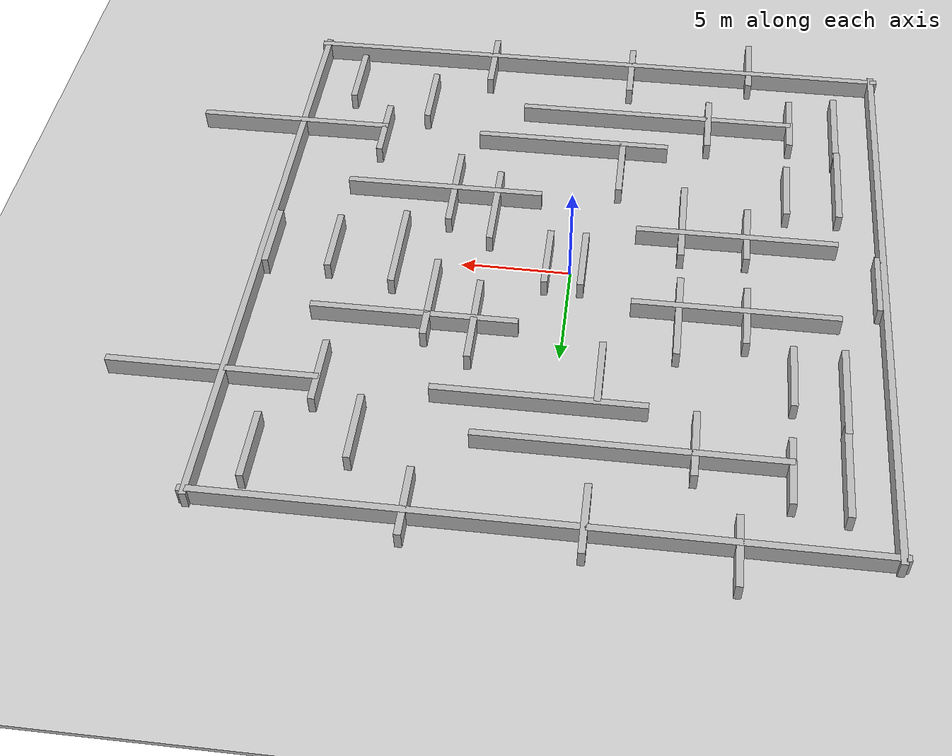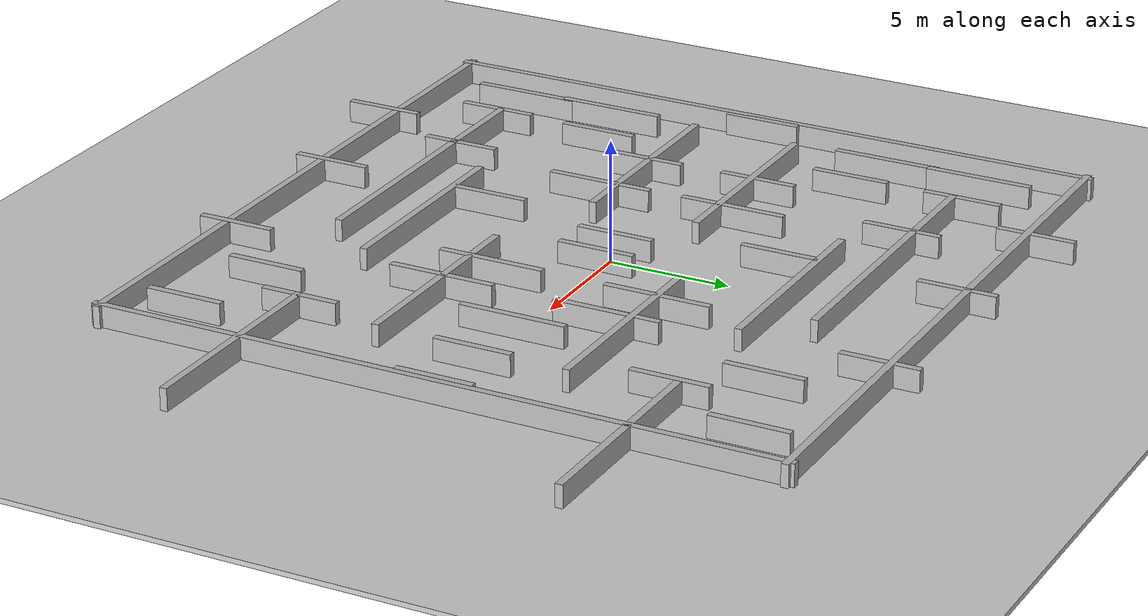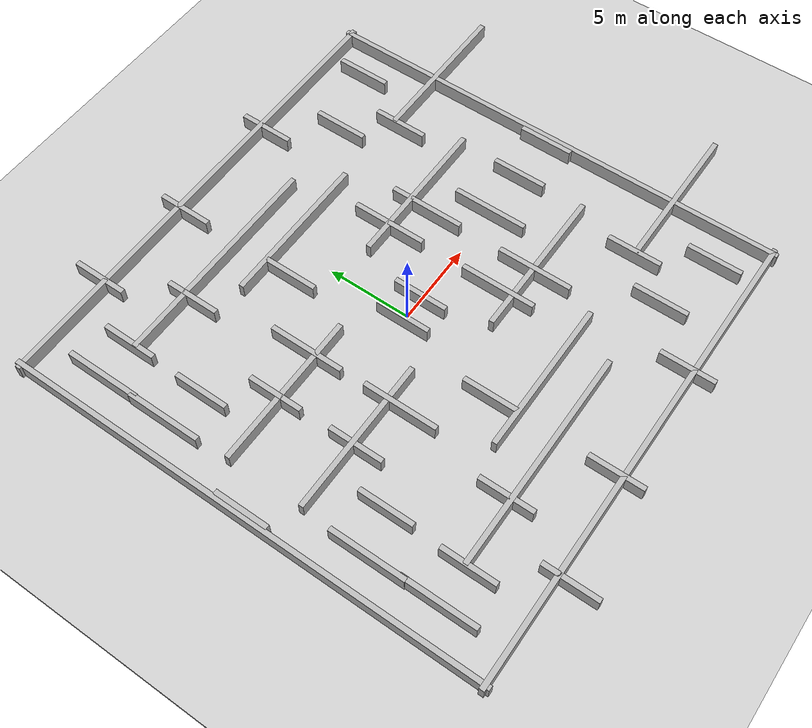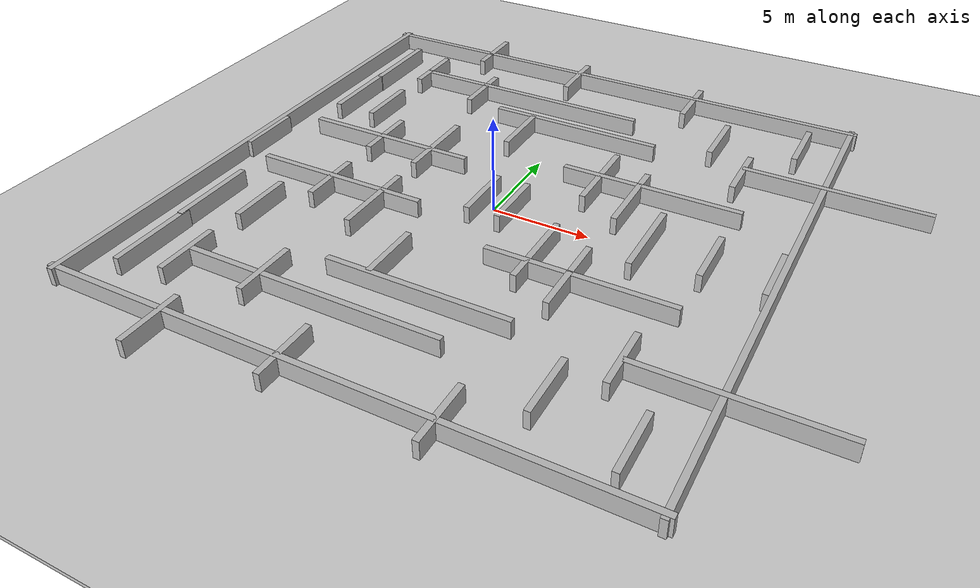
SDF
<sdf version="1.10">
  <world name="pac_mouse_maze">
    <model name="maze">
      <static>true</static>
      <scale>50 50 50</scale>
    <physics name="1ms" type="ignored">
      <max_step_size>0.001</max_step_size>
      <real_time_factor>1</real_time_factor>
      <real_time_update_rate>1000</real_time_update_rate>
    </physics>
    <plugin name="gz::sim::systems::Physics" filename="gz-sim-physics-system" />
    <plugin name="gz::sim::systems::UserCommands" filename="gz-sim-user-commands-system" />
    <plugin name="gz::sim::systems::SceneBroadcaster" filename="gz-sim-scene-broadcaster-system" />
    <plugin name="gz::sim::systems::Sensors" filename="gz-sim-sensors-system">
      <render_engine>ogre2</render_engine>
    </plugin>
    <gravity>0 0 -9.8000000000000007</gravity>
    <magnetic_field>5.5644999999999998e-06 2.2875799999999999e-05 -4.2388400000000002e-05</magnetic_field>
    <atmosphere type="adiabatic" />
    <scene>
      <ambient>0.400000006 0.400000006 0.400000006 1</ambient>
      <background>0.699999988 0.699999988 0.699999988 1</background>
      <shadows>true</shadows>
    </scene>
    <model name="ground_plane">
      <static>true</static>
      <link name="link">
        <collision name="collision">
          <geometry>
            <plane>
              <normal>0 0 1</normal>
              <size>200.0 200.0</size>
            </plane>
          </geometry>
          <surface>
            <friction>
              <ode />
            </friction>
            <bounce />
            <contact />
          </surface>
        </collision>
        <visual name="visual">
          <geometry>
            <plane>
              <normal>0 0 1</normal>
              <size>200.0 200.0</size>
            </plane>
          </geometry>
          <material>
            <ambient>0.800000012 0.800000012 0.800000012 1</ambient>
            <diffuse>0.800000012 0.800000012 0.800000012 1</diffuse>
          </material>
        </visual>
        <pose>0.0 0.0 0.0 0.0 0.0 0.0</pose>
        <inertial>
          <pose>0.0 0.0 0.0 0.0 0.0 0.0</pose>
          <mass>1</mass>
          <inertia>
            <ixx>1</ixx>
            <ixy>0</ixy>
            <ixz>0</ixz>
            <iyy>1</iyy>
            <iyz>0</iyz>
            <izz>1</izz>
          </inertia>
        </inertial>
        <enable_wind>false</enable_wind>
      </link>
      <pose>0.0 0.0 0.0 0.0 0.0 0.0</pose>
      <self_collide>false</self_collide>
    </model>
    <model name="wall_n">
      <static>true</static>
      <link name="l">
        <pose>0.0 14.0 0.5 0.0 0.0 0.0</pose>
        <collision name="c">
          <geometry>
            <box>
              <size>28.6 0.3 1.0</size>
            </box>
          </geometry>
          <surface>
            <friction>
              <ode />
            </friction>
            <bounce />
            <contact />
          </surface>
        </collision>
        <visual name="v">
          <geometry>
            <box>
              <size>28.6 0.3 1.0</size>
            </box>
          </geometry>
        </visual>
        <inertial>
          <pose>0.0 0.0 0.0 0.0 0.0 0.0</pose>
          <mass>1</mass>
          <inertia>
            <ixx>1</ixx>
            <ixy>0</ixy>
            <ixz>0</ixz>
            <iyy>1</iyy>
            <iyz>0</iyz>
            <izz>1</izz>
          </inertia>
        </inertial>
        <enable_wind>false</enable_wind>
      </link>
      <pose>0.0 0.0 0.0 0.0 0.0 0.0</pose>
      <self_collide>false</self_collide>
    </model>
    <model name="wall_s">
      <static>true</static>
      <link name="l">
        <pose>0.0 -14.0 0.5 0.0 0.0 0.0</pose>
        <collision name="c">
          <geometry>
            <box>
              <size>28.6 0.3 1.0</size>
            </box>
          </geometry>
          <surface>
            <friction>
              <ode />
            </friction>
            <bounce />
            <contact />
          </surface>
        </collision>
        <visual name="v">
          <geometry>
            <box>
              <size>28.6 0.3 1.0</size>
            </box>
          </geometry>
        </visual>
        <inertial>
          <pose>0.0 0.0 0.0 0.0 0.0 0.0</pose>
          <mass>1</mass>
          <inertia>
            <ixx>1</ixx>
            <ixy>0</ixy>
            <ixz>0</ixz>
            <iyy>1</iyy>
            <iyz>0</iyz>
            <izz>1</izz>
          </inertia>
        </inertial>
        <enable_wind>false</enable_wind>
      </link>
      <pose>0.0 0.0 0.0 0.0 0.0 0.0</pose>
      <self_collide>false</self_collide>
    </model>
    <model name="wall_e">
      <static>true</static>
      <link name="l">
        <pose>14.0 0.0 0.5 0.0 0.0 0.0</pose>
        <collision name="c">
          <geometry>
            <box>
              <size>0.3 28.6 1.0</size>
            </box>
          </geometry>
          <surface>
            <friction>
              <ode />
            </friction>
            <bounce />
            <contact />
          </surface>
        </collision>
        <visual name="v">
          <geometry>
            <box>
              <size>0.3 28.6 1.0</size>
            </box>
          </geometry>
        </visual>
        <inertial>
          <pose>0.0 0.0 0.0 0.0 0.0 0.0</pose>
          <mass>1</mass>
          <inertia>
            <ixx>1</ixx>
            <ixy>0</ixy>
            <ixz>0</ixz>
            <iyy>1</iyy>
            <iyz>0</iyz>
            <izz>1</izz>
          </inertia>
        </inertial>
        <enable_wind>false</enable_wind>
      </link>
      <pose>0.0 0.0 0.0 0.0 0.0 0.0</pose>
      <self_collide>false</self_collide>
    </model>
    <model name="wall_w">
      <static>true</static>
      <link name="l">
        <pose>-14.0 0.0 0.5 0.0 0.0 0.0</pose>
        <collision name="c">
          <geometry>
            <box>
              <size>0.3 28.6 1.0</size>
            </box>
          </geometry>
          <surface>
            <friction>
              <ode />
            </friction>
            <bounce />
            <contact />
          </surface>
        </collision>
        <visual name="v">
          <geometry>
            <box>
              <size>0.3 28.6 1.0</size>
            </box>
          </geometry>
        </visual>
        <inertial>
          <pose>0.0 0.0 0.0 0.0 0.0 0.0</pose>
          <mass>1</mass>
          <inertia>
            <ixx>1</ixx>
            <ixy>0</ixy>
            <ixz>0</ixz>
            <iyy>1</iyy>
            <iyz>0</iyz>
            <izz>1</izz>
          </inertia>
        </inertial>
        <enable_wind>false</enable_wind>
      </link>
      <pose>0.0 0.0 0.0 0.0 0.0 0.0</pose>
      <self_collide>false</self_collide>
    </model>
    <model name="center_h1">
      <static>true</static>
      <link name="l">
        <pose>0.0 2.4 0.5 0.0 0.0 0.0</pose>
        <collision name="c">
          <geometry>
            <box>
              <size>9.2 0.3 1.0</size>
            </box>
          </geometry>
          <surface>
            <friction>
              <ode />
            </friction>
            <bounce />
            <contact />
          </surface>
        </collision>
        <visual name="v">
          <geometry>
            <box>
              <size>9.2 0.3 1.0</size>
            </box>
          </geometry>
        </visual>
        <inertial>
          <pose>0.0 0.0 0.0 0.0 0.0 0.0</pose>
          <mass>1</mass>
          <inertia>
            <ixx>1</ixx>
            <ixy>0</ixy>
            <ixz>0</ixz>
            <iyy>1</iyy>
            <iyz>0</iyz>
            <izz>1</izz>
          </inertia>
        </inertial>
        <enable_wind>false</enable_wind>
      </link>
      <pose>0.6216639876365662 5.49694299697876 0.0 0.0 0.0 0.0</pose>
      <self_collide>false</self_collide>
    </model>
    <model name="center_h2">
      <static>true</static>
      <link name="l">
        <pose>0.0 -2.4 0.5 0.0 0.0 0.0</pose>
        <collision name="c">
          <geometry>
            <box>
              <size>9.2 0.3 1.0</size>
            </box>
          </geometry>
          <surface>
            <friction>
              <ode />
            </friction>
            <bounce />
            <contact />
          </surface>
        </collision>
        <visual name="v">
          <geometry>
            <box>
              <size>9.2 0.3 1.0</size>
            </box>
          </geometry>
        </visual>
        <inertial>
          <pose>0.0 0.0 0.0 0.0 0.0 0.0</pose>
          <mass>1</mass>
          <inertia>
            <ixx>1</ixx>
            <ixy>0</ixy>
            <ixz>0</ixz>
            <iyy>1</iyy>
            <iyz>0</iyz>
            <izz>1</izz>
          </inertia>
        </inertial>
        <enable_wind>false</enable_wind>
      </link>
      <pose>0.6109319925308228 -5.552203178405762 0.0 0.0 0.0 0.0</pose>
      <self_collide>false</self_collide>
    </model>
    <model name="mid_n1">
      <static>true</static>
      <link name="l">
        <pose>0.0 9.2 0.5 0.0 0.0 0.0</pose>
        <collision name="c">
          <geometry>
            <box>
              <size>13.2 0.3 1.0</size>
            </box>
          </geometry>
          <surface>
            <friction>
              <ode />
            </friction>
            <bounce />
            <contact />
          </surface>
        </collision>
        <visual name="v">
          <geometry>
            <box>
              <size>13.2 0.3 1.0</size>
            </box>
          </geometry>
        </visual>
        <inertial>
          <pose>0.0 0.0 0.0 0.0 0.0 0.0</pose>
          <mass>1</mass>
          <inertia>
            <ixx>1</ixx>
            <ixy>0</ixy>
            <ixz>0</ixz>
            <iyy>1</iyy>
            <iyz>0</iyz>
            <izz>1</izz>
          </inertia>
        </inertial>
        <enable_wind>false</enable_wind>
      </link>
      <pose>-3.363460063934326 0.8335935473442078 0.0 0.0 0.0 0.0</pose>
      <self_collide>false</self_collide>
    </model>
    <model name="mid_s1">
      <static>true</static>
      <link name="l">
        <pose>0.0 -9.2 0.5 0.0 0.0 0.0</pose>
        <collision name="c">
          <geometry>
            <box>
              <size>13.2 0.3 1.0</size>
            </box>
          </geometry>
          <surface>
            <friction>
              <ode />
            </friction>
            <bounce />
            <contact />
          </surface>
        </collision>
        <visual name="v">
          <geometry>
            <box>
              <size>13.2 0.3 1.0</size>
            </box>
          </geometry>
        </visual>
        <inertial>
          <pose>0.0 0.0 0.0 0.0 0.0 0.0</pose>
          <mass>1</mass>
          <inertia>
            <ixx>1</ixx>
            <ixy>0</ixy>
            <ixz>0</ixz>
            <iyy>1</iyy>
            <iyz>0</iyz>
            <izz>1</izz>
          </inertia>
        </inertial>
        <enable_wind>false</enable_wind>
      </link>
      <pose>-3.3302600383758545 -1.0183392763137817 0.0 0.0 0.0 0.0</pose>
      <self_collide>false</self_collide>
    </model>
    <model name="tooth_n1">
      <static>true</static>
      <link name="l">
        <pose>-2.0 5.6 0.5 0.0 0.0 0.0</pose>
        <collision name="c">
          <geometry>
            <box>
              <size>0.3 3.2 1.0</size>
            </box>
          </geometry>
          <surface>
            <friction>
              <ode />
            </friction>
            <bounce />
            <contact />
          </surface>
        </collision>
        <visual name="v">
          <geometry>
            <box>
              <size>0.3 3.2 1.0</size>
            </box>
          </geometry>
        </visual>
        <inertial>
          <pose>0.0 0.0 0.0 0.0 0.0 0.0</pose>
          <mass>1</mass>
          <inertia>
            <ixx>1</ixx>
            <ixy>0</ixy>
            <ixz>0</ixz>
            <iyy>1</iyy>
            <iyz>0</iyz>
            <izz>1</izz>
          </inertia>
        </inertial>
        <enable_wind>false</enable_wind>
      </link>
      <pose>-7.947072982788086 0.0 0.0 0.0 0.0 0.0</pose>
      <self_collide>false</self_collide>
    </model>
    <model name="tooth_n2">
      <static>true</static>
      <link name="l">
        <pose>2.0 5.6 0.5 0.0 0.0 0.0</pose>
        <collision name="c">
          <geometry>
            <box>
              <size>0.3 3.2 1.0</size>
            </box>
          </geometry>
          <surface>
            <friction>
              <ode />
            </friction>
            <bounce />
            <contact />
          </surface>
        </collision>
        <visual name="v">
          <geometry>
            <box>
              <size>0.3 3.2 1.0</size>
            </box>
          </geometry>
        </visual>
        <inertial>
          <pose>0.0 0.0 0.0 0.0 0.0 0.0</pose>
          <mass>1</mass>
          <inertia>
            <ixx>1</ixx>
            <ixy>0</ixy>
            <ixz>0</ixz>
            <iyy>1</iyy>
            <iyz>0</iyz>
            <izz>1</izz>
          </inertia>
        </inertial>
        <enable_wind>false</enable_wind>
      </link>
      <pose>-3.828693389892578 0.6854680180549622 0.0 0.0 0.0 0.0</pose>
      <self_collide>false</self_collide>
    </model>
    <model name="tooth_s1">
      <static>true</static>
      <link name="l">
        <pose>-2.0 -5.6 0.5 0.0 0.0 0.0</pose>
        <collision name="c">
          <geometry>
            <box>
              <size>0.3 3.2 1.0</size>
            </box>
          </geometry>
          <surface>
            <friction>
              <ode />
            </friction>
            <bounce />
            <contact />
          </surface>
        </collision>
        <visual name="v">
          <geometry>
            <box>
              <size>0.3 3.2 1.0</size>
            </box>
          </geometry>
        </visual>
        <inertial>
          <pose>0.0 0.0 0.0 0.0 0.0 0.0</pose>
          <mass>1</mass>
          <inertia>
            <ixx>1</ixx>
            <ixy>0</ixy>
            <ixz>0</ixz>
            <iyy>1</iyy>
            <iyz>0</iyz>
            <izz>1</izz>
          </inertia>
        </inertial>
        <enable_wind>false</enable_wind>
      </link>
      <pose>-7.705901145935059 0.0 0.0 0.0 0.0 0.0</pose>
      <self_collide>false</self_collide>
    </model>
    <model name="tooth_s2">
      <static>true</static>
      <link name="l">
        <pose>2.0 -5.6 0.5 0.0 0.0 0.0</pose>
        <collision name="c">
          <geometry>
            <box>
              <size>0.3 3.2 1.0</size>
            </box>
          </geometry>
          <surface>
            <friction>
              <ode />
            </friction>
            <bounce />
            <contact />
          </surface>
        </collision>
        <visual name="v">
          <geometry>
            <box>
              <size>0.3 3.2 1.0</size>
            </box>
          </geometry>
        </visual>
        <inertial>
          <pose>0.0 0.0 0.0 0.0 0.0 0.0</pose>
          <mass>1</mass>
          <inertia>
            <ixx>1</ixx>
            <ixy>0</ixy>
            <ixz>0</ixz>
            <iyy>1</iyy>
            <iyz>0</iyz>
            <izz>1</izz>
          </inertia>
        </inertial>
        <enable_wind>false</enable_wind>
      </link>
      <pose>-3.820828437805176 -0.731112003326416 0.0 0.0 0.0 0.0</pose>
      <self_collide>false</self_collide>
    </model>
    <model name="side_l1">
      <static>true</static>
      <link name="l">
        <pose>-9.2 3.6 0.5 0.0 0.0 0.0</pose>
        <collision name="c">
          <geometry>
            <box>
              <size>0.3 4.4 1.0</size>
            </box>
          </geometry>
          <surface>
            <friction>
              <ode />
            </friction>
            <bounce />
            <contact />
          </surface>
        </collision>
        <visual name="v">
          <geometry>
            <box>
              <size>0.3 4.4 1.0</size>
            </box>
          </geometry>
        </visual>
        <inertial>
          <pose>0.0 0.0 0.0 0.0 0.0 0.0</pose>
          <mass>1</mass>
          <inertia>
            <ixx>1</ixx>
            <ixy>0</ixy>
            <ixz>0</ixz>
            <iyy>1</iyy>
            <iyz>0</iyz>
            <izz>1</izz>
          </inertia>
        </inertial>
        <enable_wind>false</enable_wind>
      </link>
      <pose>-2.889400005340576 6.620140075683594 0.017654599621891975 0.0 0.0 0.0</pose>
      <self_collide>false</self_collide>
    </model>
    <model name="side_l2">
      <static>true</static>
      <link name="l">
        <pose>-8.0 -3.6 0.5 0.0 0.0 0.0</pose>
        <collision name="c">
          <geometry>
            <box>
              <size>0.3 4.4 1.0</size>
            </box>
          </geometry>
          <surface>
            <friction>
              <ode />
            </friction>
            <bounce />
            <contact />
          </surface>
        </collision>
        <visual name="v">
          <geometry>
            <box>
              <size>0.3 4.4 1.0</size>
            </box>
          </geometry>
        </visual>
        <inertial>
          <pose>0.0 0.0 0.0 0.0 0.0 0.0</pose>
          <mass>1</mass>
          <inertia>
            <ixx>1</ixx>
            <ixy>0</ixy>
            <ixz>0</ixz>
            <iyy>1</iyy>
            <iyz>0</iyz>
            <izz>1</izz>
          </inertia>
        </inertial>
        <enable_wind>false</enable_wind>
      </link>
      <pose>3.0802199840545654 0.5799739956855774 0.0 0.0 0.0 0.0</pose>
      <self_collide>false</self_collide>
    </model>

    <model name="side_l1_1">
      <static>true</static>
      <link name="l">
        <pose>-9.2 3.6 0.5 0.0 0.0 0.0</pose>
        <collision name="c">
          <geometry>
            <box>
              <size>0.3 4.4 1.0</size>
            </box>
          </geometry>
          <surface>
            <friction>
              <ode />
            </friction>
            <bounce />
            <contact />
          </surface>
        </collision>
        <visual name="v">
          <geometry>
            <box>
              <size>0.3 4.4 1.0</size>
            </box>
          </geometry>
        </visual>
      </link>
      <pose>-2.874917856522469 -13.811436725232536 0.0 0.0 0.0 0.0</pose>
      <self_collide>false</self_collide>
    </model>
    <model name="side_l1_2">
      <static>true</static>
      <link name="l">
        <pose>-9.2 3.6 0.5 0.0 0.0 0.0</pose>
        <collision name="c">
          <geometry>
            <box>
              <size>0.3 4.4 1.0</size>
            </box>
          </geometry>
          <surface>
            <friction>
              <ode />
            </friction>
            <bounce />
            <contact />
          </surface>
        </collision>
        <visual name="v">
          <geometry>
            <box>
              <size>0.3 4.4 1.0</size>
            </box>
          </geometry>
        </visual>
      </link>
      <pose>-2.924379110818224 2.596288415962801 0.017654599621891975 0.0 0.0 0.0</pose>
      <self_collide>false</self_collide>
    </model>
    <model name="side_l1_3">
      <static>true</static>
      <link name="l">
        <pose>-9.2 3.6 0.5 0.0 0.0 0.0</pose>
        <collision name="c">
          <geometry>
            <box>
              <size>0.3 4.4 1.0</size>
            </box>
          </geometry>
          <surface>
            <friction>
              <ode />
            </friction>
            <bounce />
            <contact />
          </surface>
        </collision>
        <visual name="v">
          <geometry>
            <box>
              <size>0.3 4.4 1.0</size>
            </box>
          </geometry>
        </visual>
      </link>
      <pose>-2.9168755192225237 -9.848921239124996 0.017654599621891975 0.0 0.0 0.0</pose>
      <self_collide>false</self_collide>
    </model>
    <model name="center_h1_1_1_1">
      <static>true</static>
      <link name="l">
        <pose>0.0 2.4 0.5 0.0 0.0 0.0</pose>
        <collision name="c">
          <geometry>
            <box>
              <size>9.2 0.3 1.0</size>
            </box>
          </geometry>
          <surface>
            <friction>
              <ode />
            </friction>
            <bounce />
            <contact />
          </surface>
        </collision>
        <visual name="v">
          <geometry>
            <box>
              <size>9.2 0.3 1.0</size>
            </box>
          </geometry>
        </visual>
      </link>
      <pose>-7.463558216156297 -0.20275455918743468 0.0 0.0 0.0 0.0</pose>
      <self_collide>false</self_collide>
    </model>
    <model name="center_h1_1_1_2">
      <static>true</static>
      <link name="l">
        <pose>0.0 2.4 0.5 0.0 0.0 0.0</pose>
        <collision name="c">
          <geometry>
            <box>
              <size>9.2 0.3 1.0</size>
            </box>
          </geometry>
          <surface>
            <friction>
              <ode />
            </friction>
            <bounce />
            <contact />
          </surface>
        </collision>
        <visual name="v">
          <geometry>
            <box>
              <size>9.2 0.3 1.0</size>
            </box>
          </geometry>
        </visual>
      </link>
      <pose>-7.417992962552434 -4.6842361662276435 0.0 0.0 0.0 0.0</pose>
      <self_collide>false</self_collide>
    </model>
    <model name="tooth_s1_1">
      <static>true</static>
      <link name="l">
        <pose>-2.0 -5.6 0.5 0.0 0.0 0.0</pose>
        <collision name="c">
          <geometry>
            <box>
              <size>0.3 3.2 1.0</size>
            </box>
          </geometry>
          <surface>
            <friction>
              <ode />
            </friction>
            <bounce />
            <contact />
          </surface>
        </collision>
        <visual name="v">
          <geometry>
            <box>
              <size>0.3 3.2 1.0</size>
            </box>
          </geometry>
        </visual>
      </link>
      <pose>-5.940915414027579 8.063972884374028 0.0 0.0 0.0 0.0</pose>
      <self_collide>false</self_collide>
    </model>
    <model name="tooth_s1_2">
      <static>true</static>
      <link name="l">
        <pose>-2.0 -5.6 0.5 0.0 0.0 0.0</pose>
        <collision name="c">
          <geometry>
            <box>
              <size>0.3 3.2 1.0</size>
            </box>
          </geometry>
          <surface>
            <friction>
              <ode />
            </friction>
            <bounce />
            <contact />
          </surface>
        </collision>
        <visual name="v">
          <geometry>
            <box>
              <size>0.3 3.2 1.0</size>
            </box>
          </geometry>
        </visual>
      </link>
      <pose>-5.884129684136543 3.1153956186105285 0.0 0.0 0.0 0.0</pose>
      <self_collide>false</self_collide>
    </model>
    <model name="tooth_s1_4">
      <static>true</static>
      <link name="l">
        <pose>-2.0 -5.6 0.5 0.0 0.0 0.0</pose>
        <collision name="c">
          <geometry>
            <box>
              <size>0.3 3.2 1.0</size>
            </box>
          </geometry>
          <surface>
            <friction>
              <ode />
            </friction>
            <bounce />
            <contact />
          </surface>
        </collision>
        <visual name="v">
          <geometry>
            <box>
              <size>0.3 3.2 1.0</size>
            </box>
          </geometry>
        </visual>
      </link>
      <pose>-5.800740961181202 19.95615718784665 0.0 0.0 0.0 0.0</pose>
      <self_collide>false</self_collide>
    </model>
    <model name="tooth_s1_5">
      <static>true</static>
      <link name="l">
        <pose>-2.0 -5.6 0.5 0.0 0.0 0.0</pose>
        <collision name="c">
          <geometry>
            <box>
              <size>0.3 3.2 1.0</size>
            </box>
          </geometry>
          <surface>
            <friction>
              <ode />
            </friction>
            <bounce />
            <contact />
          </surface>
        </collision>
        <visual name="v">
          <geometry>
            <box>
              <size>0.3 3.2 1.0</size>
            </box>
          </geometry>
        </visual>
      </link>
      <pose>-3.9564494307179814 15.147248725363408 0.0 0.0 0.0 0.0</pose>
      <self_collide>false</self_collide>
    </model>
    <model name="tooth_s1_6">
      <static>true</static>
      <link name="l">
        <pose>-2.0 -5.6 0.5 0.0 0.0 0.0</pose>
        <collision name="c">
          <geometry>
            <box>
              <size>0.3 3.2 1.0</size>
            </box>
          </geometry>
          <surface>
            <friction>
              <ode />
            </friction>
            <bounce />
            <contact />
          </surface>
        </collision>
        <visual name="v">
          <geometry>
            <box>
              <size>0.3 3.2 1.0</size>
            </box>
          </geometry>
        </visual>
      </link>
      <pose>-7.851756800152295 16.041078151894 0.0 0.0 0.0 0.0</pose>
      <self_collide>false</self_collide>
    </model>
    <model name="tooth_s1_7">
      <static>true</static>
      <link name="l">
        <pose>-2.0 -5.6 0.5 0.0 0.0 0.0</pose>
        <collision name="c">
          <geometry>
            <box>
              <size>0.3 3.2 1.0</size>
            </box>
          </geometry>
          <surface>
            <friction>
              <ode />
            </friction>
            <bounce />
            <contact />
          </surface>
        </collision>
        <visual name="v">
          <geometry>
            <box>
              <size>0.3 3.2 1.0</size>
            </box>
          </geometry>
        </visual>
      </link>
      <pose>-7.868772837429468 -4.790368347655328 0.0 0.0 0.0 0.0</pose>
      <self_collide>false</self_collide>
    </model>
    <model name="tooth_s1_8">
      <static>true</static>
      <link name="l">
        <pose>-2.0 -5.6 0.5 0.0 0.0 0.0</pose>
        <collision name="c">
          <geometry>
            <box>
              <size>0.3 3.2 1.0</size>
            </box>
          </geometry>
          <surface>
            <friction>
              <ode />
            </friction>
            <bounce />
            <contact />
          </surface>
        </collision>
        <visual name="v">
          <geometry>
            <box>
              <size>0.3 3.2 1.0</size>
            </box>
          </geometry>
        </visual>
      </link>
      <pose>-5.837620874624329 -9.047024856472454 0.0 0.0 0.0 0.0</pose>
      <self_collide>false</self_collide>
    </model>
    <model name="tooth_s1_9">
      <static>true</static>
      <link name="l">
        <pose>-2.0 -5.6 0.5 0.0 0.0 0.0</pose>
        <collision name="c">
          <geometry>
            <box>
              <size>0.3 3.2 1.0</size>
            </box>
          </geometry>
          <surface>
            <friction>
              <ode />
            </friction>
            <bounce />
            <contact />
          </surface>
        </collision>
        <visual name="v">
          <geometry>
            <box>
              <size>0.3 3.2 1.0</size>
            </box>
          </geometry>
        </visual>
      </link>
      <pose>-3.892681009428289 -4.308192941570036 0.0 0.0 0.0 0.0</pose>
      <self_collide>false</self_collide>
    </model>
    <model name="tooth_s1_10">
      <static>true</static>
      <link name="l">
        <pose>-2.0 -5.6 0.5 0.0 0.0 0.0</pose>
        <collision name="c">
          <geometry>
            <box>
              <size>0.3 3.2 1.0</size>
            </box>
          </geometry>
          <surface>
            <friction>
              <ode />
            </friction>
            <bounce />
            <contact />
          </surface>
        </collision>
        <visual name="v">
          <geometry>
            <box>
              <size>0.3 3.2 1.0</size>
            </box>
          </geometry>
        </visual>
      </link>
      <pose>-11.754604363037725 5.531798408815779 0.0 0.0 0.0 0.0</pose>
      <self_collide>false</self_collide>
    </model>
    <model name="side_l2_1">
      <static>true</static>
      <link name="l">
        <pose>-8.0 -3.6 0.5 0.0 0.0 0.0</pose>
        <collision name="c">
          <geometry>
            <box>
              <size>0.3 4.4 1.0</size>
            </box>
          </geometry>
          <surface>
            <friction>
              <ode />
            </friction>
            <bounce />
            <contact />
          </surface>
        </collision>
        <visual name="v">
          <geometry>
            <box>
              <size>0.3 4.4 1.0</size>
            </box>
          </geometry>
        </visual>
      </link>
      <pose>3.0207107153050696 6.379693487913342 0.0 0.0 0.0 0.0</pose>
      <self_collide>false</self_collide>
    </model>
    <model name="tooth_s1_3_1">
      <static>true</static>
      <link name="l">
        <pose>-2.0 -5.6 0.5 0.0 0.0 0.0</pose>
        <collision name="c">
          <geometry>
            <box>
              <size>0.3 3.2 1.0</size>
            </box>
          </geometry>
          <surface>
            <friction>
              <ode />
            </friction>
            <bounce />
            <contact />
          </surface>
        </collision>
        <visual name="v">
          <geometry>
            <box>
              <size>0.3 3.2 1.0</size>
            </box>
          </geometry>
        </visual>
      </link>
      <pose>3.060929676181374 5.5123685098397806 0.0 0.0 0.0 0.0</pose>
      <self_collide>false</self_collide>
    </model>
    <model name="tooth_s1_3_1_1">
      <static>true</static>
      <link name="l">
        <pose>-2.0 -5.6 0.5 0.0 0.0 0.0</pose>
        <collision name="c">
          <geometry>
            <box>
              <size>0.3 3.2 1.0</size>
            </box>
          </geometry>
          <surface>
            <friction>
              <ode />
            </friction>
            <bounce />
            <contact />
          </surface>
        </collision>
        <visual name="v">
          <geometry>
            <box>
              <size>0.3 3.2 1.0</size>
            </box>
          </geometry>
        </visual>
      </link>
      <pose>1.4442404398894713 5.491902438664766 0.0 0.0 0.0 0.0</pose>
      <self_collide>false</self_collide>
    </model>
    <model name="tooth_s1_2_1">
      <static>true</static>
      <link name="l">
        <pose>-2.0 -5.6 0.5 0.0 0.0 0.0</pose>
        <collision name="c">
          <geometry>
            <box>
              <size>0.3 3.2 1.0</size>
            </box>
          </geometry>
          <surface>
            <friction>
              <ode />
            </friction>
            <bounce />
            <contact />
          </surface>
        </collision>
        <visual name="v">
          <geometry>
            <box>
              <size>0.3 3.2 1.0</size>
            </box>
          </geometry>
        </visual>
      </link>
      <pose>9.99528050432086 -4.94328648011845 0.0 0.0 0.0 0.0</pose>
      <self_collide>false</self_collide>
    </model>
    <model name="tooth_s1_2_2">
      <static>true</static>
      <link name="l">
        <pose>-2.0 -5.6 0.5 0.0 0.0 0.0</pose>
        <collision name="c">
          <geometry>
            <box>
              <size>0.3 3.2 1.0</size>
            </box>
          </geometry>
          <surface>
            <friction>
              <ode />
            </friction>
            <bounce />
            <contact />
          </surface>
        </collision>
        <visual name="v">
          <geometry>
            <box>
              <size>0.3 3.2 1.0</size>
            </box>
          </geometry>
        </visual>
      </link>
      <pose>9.938041488806912 15.851237384121522 0.0 0.0 0.0 0.0</pose>
      <self_collide>false</self_collide>
    </model>
    <model name="tooth_s1_2_3">
      <static>true</static>
      <link name="l">
        <pose>-2.0 -5.6 0.5 0.0 0.0 0.0</pose>
        <collision name="c">
          <geometry>
            <box>
              <size>0.3 3.2 1.0</size>
            </box>
          </geometry>
          <surface>
            <friction>
              <ode />
            </friction>
            <bounce />
            <contact />
          </surface>
        </collision>
        <visual name="v">
          <geometry>
            <box>
              <size>0.3 3.2 1.0</size>
            </box>
          </geometry>
        </visual>
      </link>
      <pose>7.232667928896753 -8.021060866821491 0.0 0.0 0.0 0.0</pose>
      <self_collide>false</self_collide>
    </model>
    <model name="tooth_s1_2_4">
      <static>true</static>
      <link name="l">
        <pose>-2.0 -5.6 0.5 0.0 0.0 0.0</pose>
        <collision name="c">
          <geometry>
            <box>
              <size>0.3 3.2 1.0</size>
            </box>
          </geometry>
          <surface>
            <friction>
              <ode />
            </friction>
            <bounce />
            <contact />
          </surface>
        </collision>
        <visual name="v">
          <geometry>
            <box>
              <size>0.3 3.2 1.0</size>
            </box>
          </geometry>
        </visual>
      </link>
      <pose>7.2908598567310445 19.1790605814941 0.0 0.0 0.0 0.0</pose>
      <self_collide>false</self_collide>
    </model>
    <model name="center_h2_1">
      <static>true</static>
      <link name="l">
        <pose>0.0 -2.4 0.5 0.0 0.0 0.0</pose>
        <collision name="c">
          <geometry>
            <box>
              <size>9.2 0.3 1.0</size>
            </box>
          </geometry>
          <surface>
            <friction>
              <ode />
            </friction>
            <bounce />
            <contact />
          </surface>
        </collision>
        <visual name="v">
          <geometry>
            <box>
              <size>9.2 0.3 1.0</size>
            </box>
          </geometry>
        </visual>
      </link>
      <pose>6.345396603405612 -1.6512060710256877 0.0 0.0 0.0 0.0</pose>
      <self_collide>false</self_collide>
    </model>
    <model name="center_h2_2">
      <static>true</static>
      <link name="l">
        <pose>0.0 -2.4 0.5 0.0 0.0 0.0</pose>
        <collision name="c">
          <geometry>
            <box>
              <size>9.2 0.3 1.0</size>
            </box>
          </geometry>
          <surface>
            <friction>
              <ode />
            </friction>
            <bounce />
            <contact />
          </surface>
        </collision>
        <visual name="v">
          <geometry>
            <box>
              <size>9.2 0.3 1.0</size>
            </box>
          </geometry>
        </visual>
      </link>
      <pose>6.524318579665605 6.328017995503379 0.0 0.0 0.0 0.0</pose>
      <self_collide>false</self_collide>
    </model>
    <model name="side_l2_1_1">
      <static>true</static>
      <link name="l">
        <pose>-8.0 -3.6 0.5 0.0 0.0 0.0</pose>
        <collision name="c">
          <geometry>
            <box>
              <size>0.3 4.4 1.0</size>
            </box>
          </geometry>
          <surface>
            <friction>
              <ode />
            </friction>
            <bounce />
            <contact />
          </surface>
        </collision>
        <visual name="v">
          <geometry>
            <box>
              <size>0.3 4.4 1.0</size>
            </box>
          </geometry>
        </visual>
      </link>
      <pose>11.833604081114885 0.4777159021624515 0.0 0.0 0.0 0.0</pose>
      <self_collide>false</self_collide>
    </model>
    <model name="side_l2_1_1_1">
      <static>true</static>
      <link name="l">
        <pose>-8.0 -3.6 0.5 0.0 0.0 0.0</pose>
        <collision name="c">
          <geometry>
            <box>
              <size>0.3 4.4 1.0</size>
            </box>
          </geometry>
          <surface>
            <friction>
              <ode />
            </friction>
            <bounce />
            <contact />
          </surface>
        </collision>
        <visual name="v">
          <geometry>
            <box>
              <size>0.3 4.4 1.0</size>
            </box>
          </geometry>
        </visual>
      </link>
      <pose>13.94428451303717 6.487485803237202 0.0 0.0 0.0 0.0</pose>
      <self_collide>false</self_collide>
    </model>
    <model name="side_l2_1_1_2">
      <static>true</static>
      <link name="l">
        <pose>-8.0 -3.6 0.5 0.0 0.0 0.0</pose>
        <collision name="c">
          <geometry>
            <box>
              <size>0.3 4.4 1.0</size>
            </box>
          </geometry>
          <surface>
            <friction>
              <ode />
            </friction>
            <bounce />
            <contact />
          </surface>
        </collision>
        <visual name="v">
          <geometry>
            <box>
              <size>0.3 4.4 1.0</size>
            </box>
          </geometry>
        </visual>
      </link>
      <pose>15.855115546473561 3.5891384484622932 0.0 0.0 0.0 0.0</pose>
      <self_collide>false</self_collide>
    </model>
    <model name="side_l2_1_1_3">
      <static>true</static>
      <link name="l">
        <pose>-8.0 -3.6 0.5 0.0 0.0 0.0</pose>
        <collision name="c">
          <geometry>
            <box>
              <size>0.3 4.4 1.0</size>
            </box>
          </geometry>
          <surface>
            <friction>
              <ode />
            </friction>
            <bounce />
            <contact />
          </surface>
        </collision>
        <visual name="v">
          <geometry>
            <box>
              <size>0.3 4.4 1.0</size>
            </box>
          </geometry>
        </visual>
      </link>
      <pose>13.876156921082318 -0.5140230118942011 0.0 0.0 0.0 0.0</pose>
      <self_collide>false</self_collide>
    </model>
    <model name="ground_plane_1">
      <static>true</static>
      <link name="link">
        <collision name="collision">
          <geometry>
            <plane>
              <normal>0 0 1</normal>
              <size>200.0 200.0</size>
            </plane>
          </geometry>
          <surface>
            <friction>
              <ode />
            </friction>
            <bounce />
            <contact />
          </surface>
        </collision>
        <visual name="visual">
          <geometry>
            <plane>
              <normal>0 0 1</normal>
              <size>200.0 200.0</size>
            </plane>
          </geometry>
          <material>
            <ambient>0.800000012 0.800000012 0.800000012 1</ambient>
            <diffuse>0.800000012 0.800000012 0.800000012 1</diffuse>
          </material>
        </visual>
      </link>
      <pose>5.6788763649290805 2.5741735376872716 0.0 0.0 0.0 0.0</pose>
      <self_collide>false</self_collide>
    </model>
    <model name="side_l2_1_1_1_1">
      <static>true</static>
      <link name="l">
        <pose>-8.0 -3.6 0.5 0.0 0.0 0.0</pose>
        <collision name="c">
          <geometry>
            <box>
              <size>0.3 4.4 1.0</size>
            </box>
          </geometry>
          <surface>
            <friction>
              <ode />
            </friction>
            <bounce />
            <contact />
          </surface>
        </collision>
        <visual name="v">
          <geometry>
            <box>
              <size>0.3 4.4 1.0</size>
            </box>
          </geometry>
        </visual>
      </link>
      <pose>11.872278187420942 7.531414229894585 0.0 0.0 0.0 0.0</pose>
      <self_collide>false</self_collide>
    </model>
    <model name="tooth_s1_2_1_1">
      <static>true</static>
      <link name="l">
        <pose>-2.0 -5.6 0.5 0.0 0.0 0.0</pose>
        <collision name="c">
          <geometry>
            <box>
              <size>0.3 3.2 1.0</size>
            </box>
          </geometry>
          <surface>
            <friction>
              <ode />
            </friction>
            <bounce />
            <contact />
          </surface>
        </collision>
        <visual name="v">
          <geometry>
            <box>
              <size>0.3 3.2 1.0</size>
            </box>
          </geometry>
        </visual>
      </link>
      <pose>13.897242024570911 -6.055611203100705 0.0 0.0 0.0 0.0</pose>
      <self_collide>false</self_collide>
    </model>
    <model name="tooth_s1_2_1_2">
      <static>true</static>
      <link name="l">
        <pose>-2.0 -5.6 0.5 0.0 0.0 0.0</pose>
        <collision name="c">
          <geometry>
            <box>
              <size>0.3 3.2 1.0</size>
            </box>
          </geometry>
          <surface>
            <friction>
              <ode />
            </friction>
            <bounce />
            <contact />
          </surface>
        </collision>
        <visual name="v">
          <geometry>
            <box>
              <size>0.3 3.2 1.0</size>
            </box>
          </geometry>
        </visual>
      </link>
      <pose>13.98178046509801 17.193679442185076 0.0 0.0 0.0 0.0</pose>
      <self_collide>false</self_collide>
    </model>
    <model name="tooth_s1_2_1_3">
      <static>true</static>
      <link name="l">
        <pose>-2.0 -5.6 0.5 0.0 0.0 0.0</pose>
        <collision name="c">
          <geometry>
            <box>
              <size>0.3 3.2 1.0</size>
            </box>
          </geometry>
          <surface>
            <friction>
              <ode />
            </friction>
            <bounce />
            <contact />
          </surface>
        </collision>
        <visual name="v">
          <geometry>
            <box>
              <size>0.3 3.2 1.0</size>
            </box>
          </geometry>
        </visual>
      </link>
      <pose>12.854085954911092 5.602914829578435 0.0 0.0 0.0 0.0</pose>
      <self_collide>false</self_collide>
    </model>
    <model name="tooth_s1_3_1_2">
      <static>true</static>
      <link name="l">
        <pose>-2.0 -5.6 0.5 0.0 0.0 0.0</pose>
        <collision name="c">
          <geometry>
            <box>
              <size>0.3 3.2 1.0</size>
            </box>
          </geometry>
          <surface>
            <friction>
              <ode />
            </friction>
            <bounce />
            <contact />
          </surface>
        </collision>
        <visual name="v">
          <geometry>
            <box>
              <size>0.3 3.2 1.0</size>
            </box>
          </geometry>
        </visual>
      </link>
      <pose>15.725380893246081 5.620766755582216 0.0 0.0 0.0 0.0</pose>
      <self_collide>false</self_collide>
    </model>
    <model name="center_h2_3">
      <static>true</static>
      <link name="l">
        <pose>0.0 -2.4 0.5 0.0 0.0 0.0</pose>
        <collision name="c">
          <geometry>
            <box>
              <size>9.2 0.3 1.0</size>
            </box>
          </geometry>
          <surface>
            <friction>
              <ode />
            </friction>
            <bounce />
            <contact />
          </surface>
        </collision>
        <visual name="v">
          <geometry>
            <box>
              <size>9.2 0.3 1.0</size>
            </box>
          </geometry>
        </visual>
      </link>
      <pose>14.384488021109048 -5.568715802121084 0.0 0.0 0.0 0.0</pose>
      <self_collide>false</self_collide>
    </model>
    <model name="center_h2_3_1">
      <static>true</static>
      <link name="l">
        <pose>0.0 -2.4 0.5 0.0 0.0 0.0</pose>
        <collision name="c">
          <geometry>
            <box>
              <size>9.2 0.3 1.0</size>
            </box>
          </geometry>
          <surface>
            <friction>
              <ode />
            </friction>
            <bounce />
            <contact />
          </surface>
        </collision>
        <visual name="v">
          <geometry>
            <box>
              <size>9.2 0.3 1.0</size>
            </box>
          </geometry>
        </visual>
      </link>
      <pose>14.514589376210559 10.300329638849632 0.0 0.0 0.0 0.0</pose>
      <self_collide>false</self_collide>
    </model>
    <model name="tooth_s1_2_1_3_1">
      <static>true</static>
      <link name="l">
        <pose>-2.0 -5.6 0.5 0.0 0.0 0.0</pose>
        <collision name="c">
          <geometry>
            <box>
              <size>0.3 3.2 1.0</size>
            </box>
          </geometry>
          <surface>
            <friction>
              <ode />
            </friction>
            <bounce />
            <contact />
          </surface>
        </collision>
        <visual name="v">
          <geometry>
            <box>
              <size>0.3 3.2 1.0</size>
            </box>
          </geometry>
        </visual>
      </link>
      <pose>11.928006254472523 -2.266371851249396 0.0 0.0 0.0 0.0</pose>
      <self_collide>false</self_collide>
    </model>
    <model name="tooth_s1_2_1_3_2">
      <static>true</static>
      <link name="l">
        <pose>-2.0 -5.6 0.5 0.0 0.0 0.0</pose>
        <collision name="c">
          <geometry>
            <box>
              <size>0.3 3.2 1.0</size>
            </box>
          </geometry>
          <surface>
            <friction>
              <ode />
            </friction>
            <bounce />
            <contact />
          </surface>
        </collision>
        <visual name="v">
          <geometry>
            <box>
              <size>0.3 3.2 1.0</size>
            </box>
          </geometry>
        </visual>
      </link>
      <pose>11.980911413364408 13.115250164381667 0.0 0.0 0.0 0.0</pose>
      <self_collide>false</self_collide>
    </model>
    <model name="tooth_s1_4_1">
      <static>true</static>
      <link name="l">
        <pose>-2.0 -5.6 0.5 0.0 0.0 0.0</pose>
        <collision name="c">
          <geometry>
            <box>
              <size>0.3 3.2 1.0</size>
            </box>
          </geometry>
          <surface>
            <friction>
              <ode />
            </friction>
            <bounce />
            <contact />
          </surface>
        </collision>
        <visual name="v">
          <geometry>
            <box>
              <size>0.3 3.2 1.0</size>
            </box>
          </geometry>
        </visual>
      </link>
      <pose>0.18705507091436324 19.190805030176072 0.0 0.0 0.0 0.0</pose>
      <self_collide>false</self_collide>
    </model>
    <model name="tooth_s1_4_2">
      <static>true</static>
      <link name="l">
        <pose>-2.0 -5.6 0.5 0.0 0.0 0.0</pose>
        <collision name="c">
          <geometry>
            <box>
              <size>0.3 3.2 1.0</size>
            </box>
          </geometry>
          <surface>
            <friction>
              <ode />
            </friction>
            <bounce />
            <contact />
          </surface>
        </collision>
        <visual name="v">
          <geometry>
            <box>
              <size>0.3 3.2 1.0</size>
            </box>
          </geometry>
        </visual>
      </link>
      <pose>0.13800090307168844 -7.995138460306844 0.0 0.0 0.0 0.0</pose>
      <self_collide>false</self_collide>
    </model>
    <light name="sun" type="directional">
      <pose>0.0 0.0 10.0 0.0 0.0 0.0</pose>
      <cast_shadows>true</cast_shadows>
      <intensity>1</intensity>
      <direction>-0.5 0.10000000000000001 -0.90000000000000002</direction>
      <diffuse>0.800000012 0.800000012 0.800000012 1</diffuse>
      <specular>0.200000003 0.200000003 0.200000003 1</specular>
      <attenuation>
        <range>10</range>
        <linear>1</linear>
        <constant>1</constant>
        <quadratic>0</quadratic>
      </attenuation>
      <spot>
        <inner_angle>0</inner_angle>
        <outer_angle>0</outer_angle>
        <falloff>0</falloff>
      </spot>
    </light>
    </model>
  </world>
</sdf>
